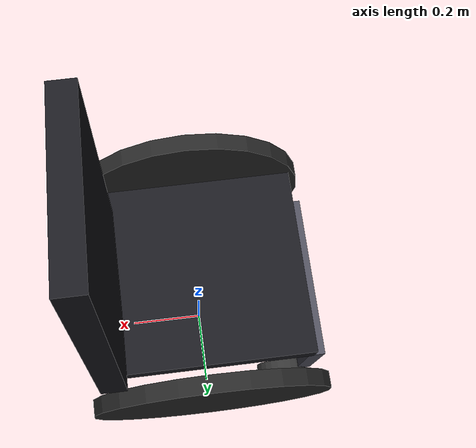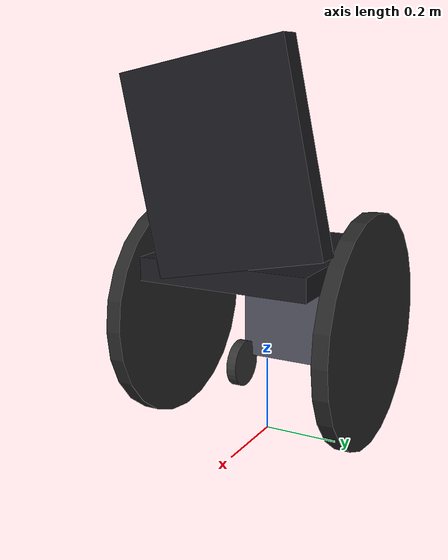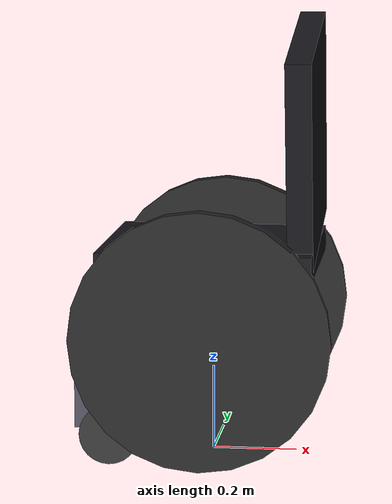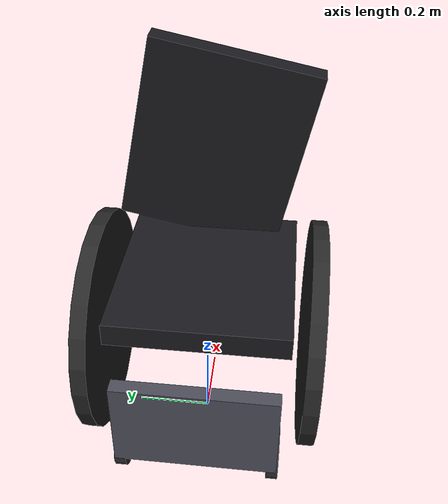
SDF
<?xml version="1.0"?>
<sdf version="1.6">
  <model name="wheelchair">
    <static>true</static>
    <!-- Seat -->
    <link name="seat">
      <pose>0 0 0.48 0 0 0</pose>
      <collision name="c"><geometry><box><size>0.5 0.45 0.06</size></box></geometry></collision>
      <visual name="v">
        <geometry><box><size>0.5 0.45 0.06</size></box></geometry>
        <material><ambient>0.1 0.1 0.12 1</ambient><diffuse>0.1 0.1 0.12 1</diffuse></material>
      </visual>
    </link>
    <!-- Backrest -->
    <link name="back">
      <pose>0.22 0 0.75 0.2 0 0</pose>
      <collision name="c"><geometry><box><size>0.06 0.44 0.5</size></box></geometry></collision>
      <visual name="v">
        <geometry><box><size>0.06 0.44 0.5</size></box></geometry>
        <material><ambient>0.1 0.1 0.12 1</ambient><diffuse>0.1 0.1 0.12 1</diffuse></material>
      </visual>
    </link>
    <!-- Large rear wheels -->
    <link name="rwheel_l">
      <pose>0 0.28 0.32 1.5708 0 0</pose>
      <collision name="c"><geometry><cylinder><radius>0.3</radius><length>0.04</length></cylinder></geometry></collision>
      <visual name="v">
        <geometry><cylinder><radius>0.3</radius><length>0.04</length></cylinder></geometry>
        <material><ambient>0.15 0.15 0.15 1</ambient><diffuse>0.15 0.15 0.15 1</diffuse></material>
      </visual>
    </link>
    <link name="rwheel_r">
      <pose>0 -0.28 0.32 1.5708 0 0</pose>
      <collision name="c"><geometry><cylinder><radius>0.3</radius><length>0.04</length></cylinder></geometry></collision>
      <visual name="v">
        <geometry><cylinder><radius>0.3</radius><length>0.04</length></cylinder></geometry>
        <material><ambient>0.15 0.15 0.15 1</ambient><diffuse>0.15 0.15 0.15 1</diffuse></material>
      </visual>
    </link>
    <!-- Small front casters -->
    <link name="caster_l">
      <pose>-0.22 0.2 0.08 1.5708 0 0</pose>
      <collision name="c"><geometry><cylinder><radius>0.07</radius><length>0.03</length></cylinder></geometry></collision>
      <visual name="v">
        <geometry><cylinder><radius>0.07</radius><length>0.03</length></cylinder></geometry>
        <material><ambient>0.2 0.2 0.2 1</ambient><diffuse>0.2 0.2 0.2 1</diffuse></material>
      </visual>
    </link>
    <link name="caster_r">
      <pose>-0.22 -0.2 0.08 1.5708 0 0</pose>
      <collision name="c"><geometry><cylinder><radius>0.07</radius><length>0.03</length></cylinder></geometry></collision>
      <visual name="v">
        <geometry><cylinder><radius>0.07</radius><length>0.03</length></cylinder></geometry>
        <material><ambient>0.2 0.2 0.2 1</ambient><diffuse>0.2 0.2 0.2 1</diffuse></material>
      </visual>
    </link>
    <!-- Footrest -->
    <link name="footrest">
      <pose>-0.28 0 0.22 0 0 0</pose>
      <collision name="c"><geometry><box><size>0.04 0.42 0.25</size></box></geometry></collision>
      <visual name="v">
        <geometry><box><size>0.04 0.42 0.25</size></box></geometry>
        <material><ambient>0.3 0.3 0.35 1</ambient><diffuse>0.3 0.3 0.35 1</diffuse></material>
      </visual>
    </link>
  </model>
</sdf>
